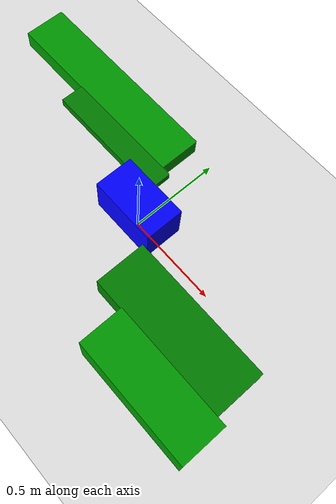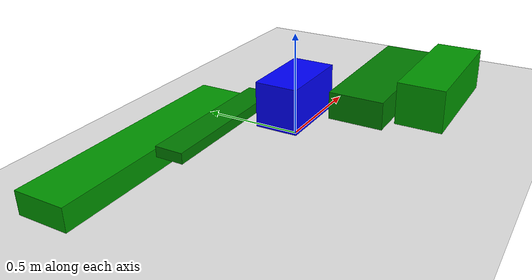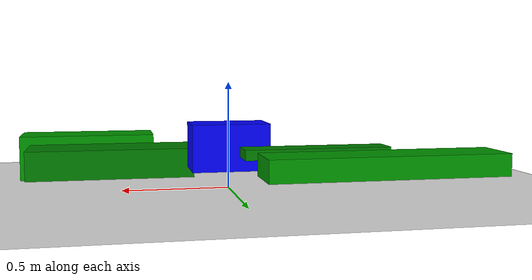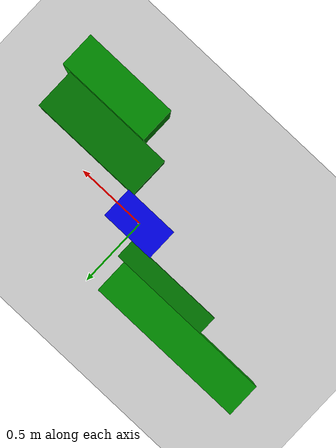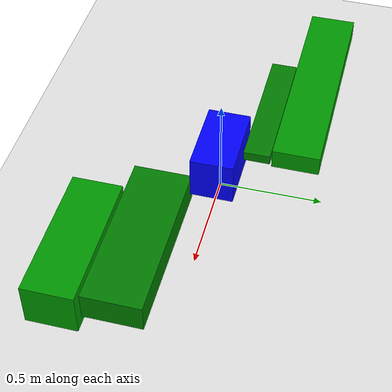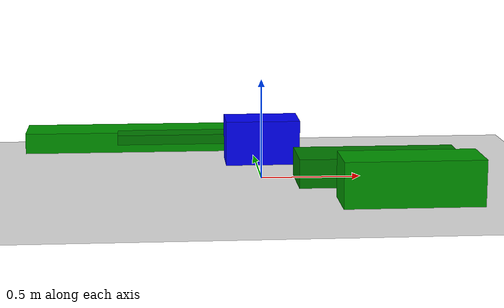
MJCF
<mujoco>
    <worldbody>
    <light diffuse=".5 .5 .5" pos="0 0 3" dir="0 0 -1"/>
    <geom type="plane" size="5 5 0.1" rgba=".9 0.9 0.9 1"/>
    <body name="main body" pos="0 0 .2">
        <joint type="free"/>
        <geom type="box" size="0.1823618432185498 0.10347852472478945 0.10960618824937188" rgba="0 0 1 1" mass="1"/>
        <site name="marker" pos="0 0 0" size="0.05"/>
        <site name="robot_center" pos="0 0 0" size="0.01"/>
        <body name="left_leg1" pos="-0.38 0.16803071267335523 -0.018229872425698852">
            <joint name="left_leg1_joint" type="hinge" axis="0 1 0" pos="0 0 0"/>
            <geom type="box" size="0.3416734528961997 0.06455218794856579 0.024025585299729122" rgba="0 .5 0 1" mass="1"/>
            <body name="left_leg2" pos="-0.2634226043447416 0.18098239022610635 -0.04">
                <joint name="left_leg2_joint" type="hinge" axis="0 1 0" pos="0 0 0"/>
                <geom type="box" size="0.5516330174695906 0.11643020227754054 0.05145013984425708" rgba="0 .6 0 1" mass="1"/>
            </body>
        </body>
        <body name="right_leg1" pos="0.5469934657171783 -0.24333416650117712 -0.09134420926683726">
            <joint name="right_leg1_joint" type="hinge" axis="0 1 0" pos="0 0 0"/>
            <geom type="box" size="0.3967219991209611 0.13985564177638768 0.07031764380456114" rgba="0 .5 0 1" mass="1"/>
            <body name="right_leg2" pos="0.1150039822423069 -0.26168403395629725 -0.011688695269279995">
                <joint name="right_leg2_joint" type="hinge" axis="0 1 0" pos="0 0 0"/>
                <geom type="box" size="0.3335542496064231 0.12182839217990957 0.12327901580387958" rgba="0 .6 0 1" mass="1"/>
            </body>
        </body>
    </body>
    </worldbody>
    <sensor>
        <framepos objtype="site" objname="marker"/>
        <velocimeter name="robot_velocity" site="robot_center"/>
    </sensor>
    <actuator>
        <position joint="left_leg1_joint" kp="10"/>
        <position joint="left_leg2_joint" kp="10"/>
        <position joint="right_leg1_joint" kp="10"/>
        <position joint="right_leg2_joint" kp="10"/>
    </actuator>
</mujoco>
